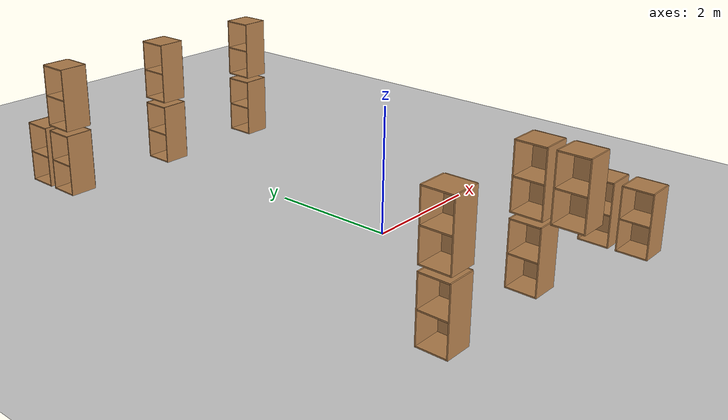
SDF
<sdf version="1.7">
 <world name="default">
  <model name="ground_plane">
   <static>1</static>
   <link name="link">
    <collision name="collision">
     <geometry><plane><normal>0 0 1</normal><size>100 100</size></plane></geometry>
     <surface><friction><ode><mu>100</mu><mu2>50</mu2></ode></friction></surface>
    </collision>
    <visual name="visual">
     <cast_shadows>0</cast_shadows>
     <geometry><plane><normal>0 0 1</normal><size>100 100</size></plane></geometry>
     <material>
      <script><uri>file://media/materials/scripts/gazebo.material</uri><name>Gazebo/Grey</name></script>
     </material>
    </visual>
   </link>
  </model>
  <model name="cabinet_4">
   <static>1</static>
   <link name="cabinet_bottom_plate">
    <inertial>
     <pose>0 0 -1 0 -0 0</pose>
     <inertia><ixx>2.05</ixx><ixy>0</ixy><ixz>0</ixz><iyy>2.05</iyy><iyz>0</iyz><izz>2.05</izz></inertia>
     <mass>25</mass>
    </inertial>
    <collision name="cabinet_bottom_plate_geom">
     <pose>0 0 0.01 0 -0 0</pose>
     <geometry><box><size>0.45 0.45 0.02</size></box></geometry>
    </collision>
    <visual name="cabinet_bottom_plate_geom_visual">
     <pose>0 0 0.01 0 -0 0</pose>
     <geometry><box><size>0.45 0.45 0.02</size></box></geometry>
     <material>
      <script><uri>file://media/materials/scripts/gazebo.material</uri><name>Gazebo/Wood</name></script>
     </material>
    </visual>
    <collision name="cabinet_bottom_plate_geom_cabinet_back_plate">
     <pose>0.235 0 0.51 0 -0 0</pose>
     <geometry><box><size>0.02 0.45 1.02</size></box></geometry>
    </collision>
    <visual name="cabinet_bottom_plate_geom_cabinet_back_plate_visual">
     <pose>0.235 0 0.51 0 -0 0</pose>
     <geometry><box><size>0.02 0.45 1.02</size></box></geometry>
     <material>
      <script><uri>file://media/materials/scripts/gazebo.material</uri><name>Gazebo/Wood</name></script>
     </material>
    </visual>
    <collision name="cabinet_bottom_plate_geom_cabinet_left_plate">
     <pose>0 0.235 0.51 0 -0 0</pose>
     <geometry><box><size>0.45 0.02 1.02</size></box></geometry>
    </collision>
    <visual name="cabinet_bottom_plate_geom_cabinet_left_plate_visual">
     <pose>0 0.235 0.51 0 -0 0</pose>
     <geometry><box><size>0.45 0.02 1.02</size></box></geometry>
     <material>
      <script><uri>file://media/materials/scripts/gazebo.material</uri><name>Gazebo/Wood</name></script>
     </material>
    </visual>
    <collision name="cabinet_bottom_plate_geom_cabinet_middle_plate">
     <pose>0 0 0.51 0 -0 0</pose>
     <geometry><box><size>0.45 0.45 0.02</size></box></geometry>
    </collision>
    <visual name="cabinet_bottom_plate_geom_cabinet_middle_plate_visual">
     <pose>0 0 0.51 0 -0 0</pose>
     <geometry><box><size>0.45 0.45 0.02</size></box></geometry>
     <material>
      <script><uri>file://media/materials/scripts/gazebo.material</uri><name>Gazebo/Wood</name></script>
     </material>
    </visual>
    <collision name="cabinet_bottom_plate_geom_cabinet_right_plate">
     <pose>0 -0.235 0.51 0 -0 0</pose>
     <geometry><box><size>0.45 0.02 1.02</size></box></geometry>
    </collision>
    <visual name="cabinet_bottom_plate_geom_cabinet_right_plate_visual">
     <pose>0 -0.235 0.51 0 -0 0</pose>
     <geometry><box><size>0.45 0.02 1.02</size></box></geometry>
     <material>
      <script><uri>file://media/materials/scripts/gazebo.material</uri><name>Gazebo/Wood</name></script>
     </material>
    </visual>
    <collision name="cabinet_bottom_plate_geom_cabinet_top_plate">
     <pose>0 0 1.01 0 -0 0</pose>
     <geometry><box><size>0.45 0.45 0.02</size></box></geometry>
    </collision>
    <visual name="cabinet_bottom_plate_geom_cabinet_top_plate_visual">
     <pose>0 0 1.01 0 -0 0</pose>
     <geometry><box><size>0.45 0.45 0.02</size></box></geometry>
     <material>
      <script><uri>file://media/materials/scripts/gazebo.material</uri><name>Gazebo/Wood</name></script>
     </material>
    </visual>
   </link>
   <pose>2 4.9 0 0 -0 0</pose>
  </model>
  <model name="cabinet_15">
   <static>1</static>
   <link name="cabinet_bottom_plate">
    <inertial>
     <pose>0 0 -1 0 -0 0</pose>
     <inertia><ixx>2.05</ixx><ixy>0</ixy><ixz>0</ixz><iyy>2.05</iyy><iyz>0</iyz><izz>2.05</izz></inertia>
     <mass>25</mass>
    </inertial>
    <collision name="cabinet_bottom_plate_geom">
     <pose>0 0 0.01 0 -0 0</pose>
     <geometry><box><size>0.45 0.45 0.02</size></box></geometry>
    </collision>
    <visual name="cabinet_bottom_plate_geom_visual">
     <pose>0 0 0.01 0 -0 0</pose>
     <geometry><box><size>0.45 0.45 0.02</size></box></geometry>
     <material>
      <script><uri>file://media/materials/scripts/gazebo.material</uri><name>Gazebo/Wood</name></script>
     </material>
    </visual>
    <collision name="cabinet_bottom_plate_geom_cabinet_back_plate">
     <pose>0.235 0 0.51 0 -0 0</pose>
     <geometry><box><size>0.02 0.45 1.02</size></box></geometry>
    </collision>
    <visual name="cabinet_bottom_plate_geom_cabinet_back_plate_visual">
     <pose>0.235 0 0.51 0 -0 0</pose>
     <geometry><box><size>0.02 0.45 1.02</size></box></geometry>
     <material>
      <script><uri>file://media/materials/scripts/gazebo.material</uri><name>Gazebo/Wood</name></script>
     </material>
    </visual>
    <collision name="cabinet_bottom_plate_geom_cabinet_left_plate">
     <pose>0 0.235 0.51 0 -0 0</pose>
     <geometry><box><size>0.45 0.02 1.02</size></box></geometry>
    </collision>
    <visual name="cabinet_bottom_plate_geom_cabinet_left_plate_visual">
     <pose>0 0.235 0.51 0 -0 0</pose>
     <geometry><box><size>0.45 0.02 1.02</size></box></geometry>
     <material>
      <script><uri>file://media/materials/scripts/gazebo.material</uri><name>Gazebo/Wood</name></script>
     </material>
    </visual>
    <collision name="cabinet_bottom_plate_geom_cabinet_middle_plate">
     <pose>0 0 0.51 0 -0 0</pose>
     <geometry><box><size>0.45 0.45 0.02</size></box></geometry>
    </collision>
    <visual name="cabinet_bottom_plate_geom_cabinet_middle_plate_visual">
     <pose>0 0 0.51 0 -0 0</pose>
     <geometry><box><size>0.45 0.45 0.02</size></box></geometry>
     <material>
      <script><uri>file://media/materials/scripts/gazebo.material</uri><name>Gazebo/Wood</name></script>
     </material>
    </visual>
    <collision name="cabinet_bottom_plate_geom_cabinet_right_plate">
     <pose>0 -0.235 0.51 0 -0 0</pose>
     <geometry><box><size>0.45 0.02 1.02</size></box></geometry>
    </collision>
    <visual name="cabinet_bottom_plate_geom_cabinet_right_plate_visual">
     <pose>0 -0.235 0.51 0 -0 0</pose>
     <geometry><box><size>0.45 0.02 1.02</size></box></geometry>
     <material>
      <script><uri>file://media/materials/scripts/gazebo.material</uri><name>Gazebo/Wood</name></script>
     </material>
    </visual>
    <collision name="cabinet_bottom_plate_geom_cabinet_top_plate">
     <pose>0 0 1.01 0 -0 0</pose>
     <geometry><box><size>0.45 0.45 0.02</size></box></geometry>
    </collision>
    <visual name="cabinet_bottom_plate_geom_cabinet_top_plate_visual">
     <pose>0 0 1.01 0 -0 0</pose>
     <geometry><box><size>0.45 0.45 0.02</size></box></geometry>
     <material>
      <script><uri>file://media/materials/scripts/gazebo.material</uri><name>Gazebo/Wood</name></script>
     </material>
    </visual>
   </link>
   <pose>0 4.9 0 0 -0 0</pose>
  </model>
  <model name="cabinet_16_clone">
   <static>1</static>
   <link name="cabinet_bottom_plate">
    <inertial>
     <pose>0 0 -1 0 -0 0</pose>
     <inertia><ixx>2.05</ixx><ixy>0</ixy><ixz>0</ixz><iyy>2.05</iyy><iyz>0</iyz><izz>2.05</izz></inertia>
     <mass>25</mass>
    </inertial>
    <collision name="cabinet_bottom_plate_geom">
     <pose>0 0 0.01 0 -0 0</pose>
     <geometry><box><size>0.45 0.45 0.02</size></box></geometry>
    </collision>
    <visual name="cabinet_bottom_plate_geom_visual">
     <pose>0 0 0.01 0 -0 0</pose>
     <geometry><box><size>0.45 0.45 0.02</size></box></geometry>
     <material>
      <script><uri>file://media/materials/scripts/gazebo.material</uri><name>Gazebo/Wood</name></script>
     </material>
    </visual>
    <collision name="cabinet_bottom_plate_geom_cabinet_back_plate">
     <pose>0.235 0 0.51 0 -0 0</pose>
     <geometry><box><size>0.02 0.45 1.02</size></box></geometry>
    </collision>
    <visual name="cabinet_bottom_plate_geom_cabinet_back_plate_visual">
     <pose>0.235 0 0.51 0 -0 0</pose>
     <geometry><box><size>0.02 0.45 1.02</size></box></geometry>
     <material>
      <script><uri>file://media/materials/scripts/gazebo.material</uri><name>Gazebo/Wood</name></script>
     </material>
    </visual>
    <collision name="cabinet_bottom_plate_geom_cabinet_left_plate">
     <pose>0 0.235 0.51 0 -0 0</pose>
     <geometry><box><size>0.45 0.02 1.02</size></box></geometry>
    </collision>
    <visual name="cabinet_bottom_plate_geom_cabinet_left_plate_visual">
     <pose>0 0.235 0.51 0 -0 0</pose>
     <geometry><box><size>0.45 0.02 1.02</size></box></geometry>
     <material>
      <script><uri>file://media/materials/scripts/gazebo.material</uri><name>Gazebo/Wood</name></script>
     </material>
    </visual>
    <collision name="cabinet_bottom_plate_geom_cabinet_middle_plate">
     <pose>0 0 0.51 0 -0 0</pose>
     <geometry><box><size>0.45 0.45 0.02</size></box></geometry>
    </collision>
    <visual name="cabinet_bottom_plate_geom_cabinet_middle_plate_visual">
     <pose>0 0 0.51 0 -0 0</pose>
     <geometry><box><size>0.45 0.45 0.02</size></box></geometry>
     <material>
      <script><uri>file://media/materials/scripts/gazebo.material</uri><name>Gazebo/Wood</name></script>
     </material>
    </visual>
    <collision name="cabinet_bottom_plate_geom_cabinet_right_plate">
     <pose>0 -0.235 0.51 0 -0 0</pose>
     <geometry><box><size>0.45 0.02 1.02</size></box></geometry>
    </collision>
    <visual name="cabinet_bottom_plate_geom_cabinet_right_plate_visual">
     <pose>0 -0.235 0.51 0 -0 0</pose>
     <geometry><box><size>0.45 0.02 1.02</size></box></geometry>
     <material>
      <script><uri>file://media/materials/scripts/gazebo.material</uri><name>Gazebo/Wood</name></script>
     </material>
    </visual>
    <collision name="cabinet_bottom_plate_geom_cabinet_top_plate">
     <pose>0 0 1.01 0 -0 0</pose>
     <geometry><box><size>0.45 0.45 0.02</size></box></geometry>
    </collision>
    <visual name="cabinet_bottom_plate_geom_cabinet_top_plate_visual">
     <pose>0 0 1.01 0 -0 0</pose>
     <geometry><box><size>0.45 0.45 0.02</size></box></geometry>
     <material>
      <script><uri>file://media/materials/scripts/gazebo.material</uri><name>Gazebo/Wood</name></script>
     </material>
    </visual>
   </link>
   <pose>-2 4.9 0 0 -0 0</pose>
  </model>
  <model name="cabinet_20">
   <static>1</static>
   <link name="cabinet_bottom_plate">
    <inertial>
     <pose>0 0 -1 0 -0 0</pose>
     <inertia><ixx>2.05</ixx><ixy>0</ixy><ixz>0</ixz><iyy>2.05</iyy><iyz>0</iyz><izz>2.05</izz></inertia>
     <mass>25</mass>
    </inertial>
    <collision name="cabinet_bottom_plate_geom">
     <pose>0 0 0.01 0 -0 0</pose>
     <geometry><box><size>0.45 0.45 0.02</size></box></geometry>
    </collision>
    <visual name="cabinet_bottom_plate_geom_visual">
     <pose>0 0 0.01 0 -0 0</pose>
     <geometry><box><size>0.45 0.45 0.02</size></box></geometry>
     <material>
      <script><uri>file://media/materials/scripts/gazebo.material</uri><name>Gazebo/Wood</name></script>
     </material>
    </visual>
    <collision name="cabinet_bottom_plate_geom_cabinet_back_plate">
     <pose>0.235 0 0.51 0 -0 0</pose>
     <geometry><box><size>0.02 0.45 1.02</size></box></geometry>
    </collision>
    <visual name="cabinet_bottom_plate_geom_cabinet_back_plate_visual">
     <pose>0.235 0 0.51 0 -0 0</pose>
     <geometry><box><size>0.02 0.45 1.02</size></box></geometry>
     <material>
      <script><uri>file://media/materials/scripts/gazebo.material</uri><name>Gazebo/Wood</name></script>
     </material>
    </visual>
    <collision name="cabinet_bottom_plate_geom_cabinet_left_plate">
     <pose>0 0.235 0.51 0 -0 0</pose>
     <geometry><box><size>0.45 0.02 1.02</size></box></geometry>
    </collision>
    <visual name="cabinet_bottom_plate_geom_cabinet_left_plate_visual">
     <pose>0 0.235 0.51 0 -0 0</pose>
     <geometry><box><size>0.45 0.02 1.02</size></box></geometry>
     <material>
      <script><uri>file://media/materials/scripts/gazebo.material</uri><name>Gazebo/Wood</name></script>
     </material>
    </visual>
    <collision name="cabinet_bottom_plate_geom_cabinet_middle_plate">
     <pose>0 0 0.51 0 -0 0</pose>
     <geometry><box><size>0.45 0.45 0.02</size></box></geometry>
    </collision>
    <visual name="cabinet_bottom_plate_geom_cabinet_middle_plate_visual">
     <pose>0 0 0.51 0 -0 0</pose>
     <geometry><box><size>0.45 0.45 0.02</size></box></geometry>
     <material>
      <script><uri>file://media/materials/scripts/gazebo.material</uri><name>Gazebo/Wood</name></script>
     </material>
    </visual>
    <collision name="cabinet_bottom_plate_geom_cabinet_right_plate">
     <pose>0 -0.235 0.51 0 -0 0</pose>
     <geometry><box><size>0.45 0.02 1.02</size></box></geometry>
    </collision>
    <visual name="cabinet_bottom_plate_geom_cabinet_right_plate_visual">
     <pose>0 -0.235 0.51 0 -0 0</pose>
     <geometry><box><size>0.45 0.02 1.02</size></box></geometry>
     <material>
      <script><uri>file://media/materials/scripts/gazebo.material</uri><name>Gazebo/Wood</name></script>
     </material>
    </visual>
    <collision name="cabinet_bottom_plate_geom_cabinet_top_plate">
     <pose>0 0 1.01 0 -0 0</pose>
     <geometry><box><size>0.45 0.45 0.02</size></box></geometry>
    </collision>
    <visual name="cabinet_bottom_plate_geom_cabinet_top_plate_visual">
     <pose>0 0 1.01 0 -0 0</pose>
     <geometry><box><size>0.45 0.45 0.02</size></box></geometry>
     <material>
      <script><uri>file://media/materials/scripts/gazebo.material</uri><name>Gazebo/Wood</name></script>
     </material>
    </visual>
   </link>
   <pose>-2 5.5 0 0 -0 0</pose>
  </model>
  <model name="cabinet_33">
   <static>1</static>
   <link name="cabinet_bottom_plate">
    <inertial>
     <pose>0 0 -1 0 -0 0</pose>
     <inertia><ixx>2.05</ixx><ixy>0</ixy><ixz>0</ixz><iyy>2.05</iyy><iyz>0</iyz><izz>2.05</izz></inertia>
     <mass>25</mass>
    </inertial>
    <collision name="cabinet_bottom_plate_geom">
     <pose>0 0 0.01 0 -0 0</pose>
     <geometry><box><size>0.45 0.45 0.02</size></box></geometry>
    </collision>
    <visual name="cabinet_bottom_plate_geom_visual">
     <pose>0 0 0.01 0 -0 0</pose>
     <geometry><box><size>0.45 0.45 0.02</size></box></geometry>
     <material>
      <script><uri>file://media/materials/scripts/gazebo.material</uri><name>Gazebo/Wood</name></script>
     </material>
    </visual>
    <collision name="cabinet_bottom_plate_geom_cabinet_back_plate">
     <pose>0.235 0 0.51 0 -0 0</pose>
     <geometry><box><size>0.02 0.45 1.02</size></box></geometry>
    </collision>
    <visual name="cabinet_bottom_plate_geom_cabinet_back_plate_visual">
     <pose>0.235 0 0.51 0 -0 0</pose>
     <geometry><box><size>0.02 0.45 1.02</size></box></geometry>
     <material>
      <script><uri>file://media/materials/scripts/gazebo.material</uri><name>Gazebo/Wood</name></script>
     </material>
    </visual>
    <collision name="cabinet_bottom_plate_geom_cabinet_left_plate">
     <pose>0 0.235 0.51 0 -0 0</pose>
     <geometry><box><size>0.45 0.02 1.02</size></box></geometry>
    </collision>
    <visual name="cabinet_bottom_plate_geom_cabinet_left_plate_visual">
     <pose>0 0.235 0.51 0 -0 0</pose>
     <geometry><box><size>0.45 0.02 1.02</size></box></geometry>
     <material>
      <script><uri>file://media/materials/scripts/gazebo.material</uri><name>Gazebo/Wood</name></script>
     </material>
    </visual>
    <collision name="cabinet_bottom_plate_geom_cabinet_middle_plate">
     <pose>0 0 0.51 0 -0 0</pose>
     <geometry><box><size>0.45 0.45 0.02</size></box></geometry>
    </collision>
    <visual name="cabinet_bottom_plate_geom_cabinet_middle_plate_visual">
     <pose>0 0 0.51 0 -0 0</pose>
     <geometry><box><size>0.45 0.45 0.02</size></box></geometry>
     <material>
      <script><uri>file://media/materials/scripts/gazebo.material</uri><name>Gazebo/Wood</name></script>
     </material>
    </visual>
    <collision name="cabinet_bottom_plate_geom_cabinet_right_plate">
     <pose>0 -0.235 0.51 0 -0 0</pose>
     <geometry><box><size>0.45 0.02 1.02</size></box></geometry>
    </collision>
    <visual name="cabinet_bottom_plate_geom_cabinet_right_plate_visual">
     <pose>0 -0.235 0.51 0 -0 0</pose>
     <geometry><box><size>0.45 0.02 1.02</size></box></geometry>
     <material>
      <script><uri>file://media/materials/scripts/gazebo.material</uri><name>Gazebo/Wood</name></script>
     </material>
    </visual>
    <collision name="cabinet_bottom_plate_geom_cabinet_top_plate">
     <pose>0 0 1.01 0 -0 0</pose>
     <geometry><box><size>0.45 0.45 0.02</size></box></geometry>
    </collision>
    <visual name="cabinet_bottom_plate_geom_cabinet_top_plate_visual">
     <pose>0 0 1.01 0 -0 0</pose>
     <geometry><box><size>0.45 0.45 0.02</size></box></geometry>
     <material>
      <script><uri>file://media/materials/scripts/gazebo.material</uri><name>Gazebo/Wood</name></script>
     </material>
    </visual>
   </link>
   <pose>2 -2.5 0 0 -0 0</pose>
  </model>
  <model name="cabinet_34">
   <static>1</static>
   <link name="cabinet_bottom_plate">
    <inertial>
     <pose>0 0 -1 0 -0 0</pose>
     <inertia><ixx>2.05</ixx><ixy>0</ixy><ixz>0</ixz><iyy>2.05</iyy><iyz>0</iyz><izz>2.05</izz></inertia>
     <mass>25</mass>
    </inertial>
    <collision name="cabinet_bottom_plate_geom">
     <pose>0 0 0.01 0 -0 0</pose>
     <geometry><box><size>0.45 0.45 0.02</size></box></geometry>
    </collision>
    <visual name="cabinet_bottom_plate_geom_visual">
     <pose>0 0 0.01 0 -0 0</pose>
     <geometry><box><size>0.45 0.45 0.02</size></box></geometry>
     <material>
      <script><uri>file://media/materials/scripts/gazebo.material</uri><name>Gazebo/Wood</name></script>
     </material>
    </visual>
    <collision name="cabinet_bottom_plate_geom_cabinet_back_plate">
     <pose>0.235 0 0.51 0 -0 0</pose>
     <geometry><box><size>0.02 0.45 1.02</size></box></geometry>
    </collision>
    <visual name="cabinet_bottom_plate_geom_cabinet_back_plate_visual">
     <pose>0.235 0 0.51 0 -0 0</pose>
     <geometry><box><size>0.02 0.45 1.02</size></box></geometry>
     <material>
      <script><uri>file://media/materials/scripts/gazebo.material</uri><name>Gazebo/Wood</name></script>
     </material>
    </visual>
    <collision name="cabinet_bottom_plate_geom_cabinet_left_plate">
     <pose>0 0.235 0.51 0 -0 0</pose>
     <geometry><box><size>0.45 0.02 1.02</size></box></geometry>
    </collision>
    <visual name="cabinet_bottom_plate_geom_cabinet_left_plate_visual">
     <pose>0 0.235 0.51 0 -0 0</pose>
     <geometry><box><size>0.45 0.02 1.02</size></box></geometry>
     <material>
      <script><uri>file://media/materials/scripts/gazebo.material</uri><name>Gazebo/Wood</name></script>
     </material>
    </visual>
    <collision name="cabinet_bottom_plate_geom_cabinet_middle_plate">
     <pose>0 0 0.51 0 -0 0</pose>
     <geometry><box><size>0.45 0.45 0.02</size></box></geometry>
    </collision>
    <visual name="cabinet_bottom_plate_geom_cabinet_middle_plate_visual">
     <pose>0 0 0.51 0 -0 0</pose>
     <geometry><box><size>0.45 0.45 0.02</size></box></geometry>
     <material>
      <script><uri>file://media/materials/scripts/gazebo.material</uri><name>Gazebo/Wood</name></script>
     </material>
    </visual>
    <collision name="cabinet_bottom_plate_geom_cabinet_right_plate">
     <pose>0 -0.235 0.51 0 -0 0</pose>
     <geometry><box><size>0.45 0.02 1.02</size></box></geometry>
    </collision>
    <visual name="cabinet_bottom_plate_geom_cabinet_right_plate_visual">
     <pose>0 -0.235 0.51 0 -0 0</pose>
     <geometry><box><size>0.45 0.02 1.02</size></box></geometry>
     <material>
      <script><uri>file://media/materials/scripts/gazebo.material</uri><name>Gazebo/Wood</name></script>
     </material>
    </visual>
    <collision name="cabinet_bottom_plate_geom_cabinet_top_plate">
     <pose>0 0 1.01 0 -0 0</pose>
     <geometry><box><size>0.45 0.45 0.02</size></box></geometry>
    </collision>
    <visual name="cabinet_bottom_plate_geom_cabinet_top_plate_visual">
     <pose>0 0 1.01 0 -0 0</pose>
     <geometry><box><size>0.45 0.45 0.02</size></box></geometry>
     <material>
      <script><uri>file://media/materials/scripts/gazebo.material</uri><name>Gazebo/Wood</name></script>
     </material>
    </visual>
   </link>
   <pose>2 -3.1 0 0 -0 0</pose>
  </model>
  <model name="cabinet_48">
   <static>1</static>
   <link name="cabinet_bottom_plate">
    <inertial>
     <pose>0 0 -1 0 -0 0</pose>
     <inertia><ixx>2.05</ixx><ixy>0</ixy><ixz>0</ixz><iyy>2.05</iyy><iyz>0</iyz><izz>2.05</izz></inertia>
     <mass>25</mass>
    </inertial>
    <collision name="cabinet_bottom_plate_geom">
     <pose>0 0 0.01 0 -0 0</pose>
     <geometry><box><size>0.45 0.45 0.02</size></box></geometry>
    </collision>
    <visual name="cabinet_bottom_plate_geom_visual">
     <pose>0 0 0.01 0 -0 0</pose>
     <geometry><box><size>0.45 0.45 0.02</size></box></geometry>
     <material>
      <script><uri>file://media/materials/scripts/gazebo.material</uri><name>Gazebo/Wood</name></script>
     </material>
    </visual>
    <collision name="cabinet_bottom_plate_geom_cabinet_back_plate">
     <pose>0.235 0 0.51 0 -0 0</pose>
     <geometry><box><size>0.02 0.45 1.02</size></box></geometry>
    </collision>
    <visual name="cabinet_bottom_plate_geom_cabinet_back_plate_visual">
     <pose>0.235 0 0.51 0 -0 0</pose>
     <geometry><box><size>0.02 0.45 1.02</size></box></geometry>
     <material>
      <script><uri>file://media/materials/scripts/gazebo.material</uri><name>Gazebo/Wood</name></script>
     </material>
    </visual>
    <collision name="cabinet_bottom_plate_geom_cabinet_left_plate">
     <pose>0 0.235 0.51 0 -0 0</pose>
     <geometry><box><size>0.45 0.02 1.02</size></box></geometry>
    </collision>
    <visual name="cabinet_bottom_plate_geom_cabinet_left_plate_visual">
     <pose>0 0.235 0.51 0 -0 0</pose>
     <geometry><box><size>0.45 0.02 1.02</size></box></geometry>
     <material>
      <script><uri>file://media/materials/scripts/gazebo.material</uri><name>Gazebo/Wood</name></script>
     </material>
    </visual>
    <collision name="cabinet_bottom_plate_geom_cabinet_middle_plate">
     <pose>0 0 0.51 0 -0 0</pose>
     <geometry><box><size>0.45 0.45 0.02</size></box></geometry>
    </collision>
    <visual name="cabinet_bottom_plate_geom_cabinet_middle_plate_visual">
     <pose>0 0 0.51 0 -0 0</pose>
     <geometry><box><size>0.45 0.45 0.02</size></box></geometry>
     <material>
      <script><uri>file://media/materials/scripts/gazebo.material</uri><name>Gazebo/Wood</name></script>
     </material>
    </visual>
    <collision name="cabinet_bottom_plate_geom_cabinet_right_plate">
     <pose>0 -0.235 0.51 0 -0 0</pose>
     <geometry><box><size>0.45 0.02 1.02</size></box></geometry>
    </collision>
    <visual name="cabinet_bottom_plate_geom_cabinet_right_plate_visual">
     <pose>0 -0.235 0.51 0 -0 0</pose>
     <geometry><box><size>0.45 0.02 1.02</size></box></geometry>
     <material>
      <script><uri>file://media/materials/scripts/gazebo.material</uri><name>Gazebo/Wood</name></script>
     </material>
    </visual>
    <collision name="cabinet_bottom_plate_geom_cabinet_top_plate">
     <pose>0 0 1.01 0 -0 0</pose>
     <geometry><box><size>0.45 0.45 0.02</size></box></geometry>
    </collision>
    <visual name="cabinet_bottom_plate_geom_cabinet_top_plate_visual">
     <pose>0 0 1.01 0 -0 0</pose>
     <geometry><box><size>0.45 0.45 0.02</size></box></geometry>
     <material>
      <script><uri>file://media/materials/scripts/gazebo.material</uri><name>Gazebo/Wood</name></script>
     </material>
    </visual>
   </link>
   <pose>0 -2.5 0 0 -0 0</pose>
  </model>
  <model name="cabinet_54">
   <static>1</static>
   <link name="cabinet_bottom_plate">
    <inertial>
     <pose>0 0 -1 0 -0 0</pose>
     <inertia><ixx>2.05</ixx><ixy>0</ixy><ixz>0</ixz><iyy>2.05</iyy><iyz>0</iyz><izz>2.05</izz></inertia>
     <mass>25</mass>
    </inertial>
    <collision name="cabinet_bottom_plate_geom">
     <pose>0 0 0.01 0 -0 0</pose>
     <geometry><box><size>0.45 0.45 0.02</size></box></geometry>
    </collision>
    <visual name="cabinet_bottom_plate_geom_visual">
     <pose>0 0 0.01 0 -0 0</pose>
     <geometry><box><size>0.45 0.45 0.02</size></box></geometry>
     <material>
      <script><uri>file://media/materials/scripts/gazebo.material</uri><name>Gazebo/Wood</name></script>
     </material>
    </visual>
    <collision name="cabinet_bottom_plate_geom_cabinet_back_plate">
     <pose>0.235 0 0.51 0 -0 0</pose>
     <geometry><box><size>0.02 0.45 1.02</size></box></geometry>
    </collision>
    <visual name="cabinet_bottom_plate_geom_cabinet_back_plate_visual">
     <pose>0.235 0 0.51 0 -0 0</pose>
     <geometry><box><size>0.02 0.45 1.02</size></box></geometry>
     <material>
      <script><uri>file://media/materials/scripts/gazebo.material</uri><name>Gazebo/Wood</name></script>
     </material>
    </visual>
    <collision name="cabinet_bottom_plate_geom_cabinet_left_plate">
     <pose>0 0.235 0.51 0 -0 0</pose>
     <geometry><box><size>0.45 0.02 1.02</size></box></geometry>
    </collision>
    <visual name="cabinet_bottom_plate_geom_cabinet_left_plate_visual">
     <pose>0 0.235 0.51 0 -0 0</pose>
     <geometry><box><size>0.45 0.02 1.02</size></box></geometry>
     <material>
      <script><uri>file://media/materials/scripts/gazebo.material</uri><name>Gazebo/Wood</name></script>
     </material>
    </visual>
    <collision name="cabinet_bottom_plate_geom_cabinet_middle_plate">
     <pose>0 0 0.51 0 -0 0</pose>
     <geometry><box><size>0.45 0.45 0.02</size></box></geometry>
    </collision>
    <visual name="cabinet_bottom_plate_geom_cabinet_middle_plate_visual">
     <pose>0 0 0.51 0 -0 0</pose>
     <geometry><box><size>0.45 0.45 0.02</size></box></geometry>
     <material>
      <script><uri>file://media/materials/scripts/gazebo.material</uri><name>Gazebo/Wood</name></script>
     </material>
    </visual>
    <collision name="cabinet_bottom_plate_geom_cabinet_right_plate">
     <pose>0 -0.235 0.51 0 -0 0</pose>
     <geometry><box><size>0.45 0.02 1.02</size></box></geometry>
    </collision>
    <visual name="cabinet_bottom_plate_geom_cabinet_right_plate_visual">
     <pose>0 -0.235 0.51 0 -0 0</pose>
     <geometry><box><size>0.45 0.02 1.02</size></box></geometry>
     <material>
      <script><uri>file://media/materials/scripts/gazebo.material</uri><name>Gazebo/Wood</name></script>
     </material>
    </visual>
    <collision name="cabinet_bottom_plate_geom_cabinet_top_plate">
     <pose>0 0 1.01 0 -0 0</pose>
     <geometry><box><size>0.45 0.45 0.02</size></box></geometry>
    </collision>
    <visual name="cabinet_bottom_plate_geom_cabinet_top_plate_visual">
     <pose>0 0 1.01 0 -0 0</pose>
     <geometry><box><size>0.45 0.45 0.02</size></box></geometry>
     <material>
      <script><uri>file://media/materials/scripts/gazebo.material</uri><name>Gazebo/Wood</name></script>
     </material>
    </visual>
   </link>
   <pose>-2 -2.5 0 0 -0 0</pose>
  </model>
  <model name="cabinet_75">
   <static>1</static>
   <link name="cabinet_bottom_plate">
    <inertial>
     <pose>0 0 -1 0 -0 0</pose>
     <inertia><ixx>2.05</ixx><ixy>0</ixy><ixz>0</ixz><iyy>2.05</iyy><iyz>0</iyz><izz>2.05</izz></inertia>
     <mass>25</mass>
    </inertial>
    <collision name="cabinet_bottom_plate_geom">
     <pose>0 0 0.01 0 -0 0</pose>
     <geometry><box><size>0.45 0.45 0.02</size></box></geometry>
    </collision>
    <visual name="cabinet_bottom_plate_geom_visual">
     <pose>0 0 0.01 0 -0 0</pose>
     <geometry><box><size>0.45 0.45 0.02</size></box></geometry>
     <material>
      <script><uri>file://media/materials/scripts/gazebo.material</uri><name>Gazebo/Wood</name></script>
     </material>
    </visual>
    <collision name="cabinet_bottom_plate_geom_cabinet_back_plate">
     <pose>0.235 0 0.51 0 -0 0</pose>
     <geometry><box><size>0.02 0.45 1.02</size></box></geometry>
    </collision>
    <visual name="cabinet_bottom_plate_geom_cabinet_back_plate_visual">
     <pose>0.235 0 0.51 0 -0 0</pose>
     <geometry><box><size>0.02 0.45 1.02</size></box></geometry>
     <material>
      <script><uri>file://media/materials/scripts/gazebo.material</uri><name>Gazebo/Wood</name></script>
     </material>
    </visual>
    <collision name="cabinet_bottom_plate_geom_cabinet_left_plate">
     <pose>0 0.235 0.51 0 -0 0</pose>
     <geometry><box><size>0.45 0.02 1.02</size></box></geometry>
    </collision>
    <visual name="cabinet_bottom_plate_geom_cabinet_left_plate_visual">
     <pose>0 0.235 0.51 0 -0 0</pose>
     <geometry><box><size>0.45 0.02 1.02</size></box></geometry>
     <material>
      <script><uri>file://media/materials/scripts/gazebo.material</uri><name>Gazebo/Wood</name></script>
     </material>
    </visual>
    <collision name="cabinet_bottom_plate_geom_cabinet_middle_plate">
     <pose>0 0 0.51 0 -0 0</pose>
     <geometry><box><size>0.45 0.45 0.02</size></box></geometry>
    </collision>
    <visual name="cabinet_bottom_plate_geom_cabinet_middle_plate_visual">
     <pose>0 0 0.51 0 -0 0</pose>
     <geometry><box><size>0.45 0.45 0.02</size></box></geometry>
     <material>
      <script><uri>file://media/materials/scripts/gazebo.material</uri><name>Gazebo/Wood</name></script>
     </material>
    </visual>
    <collision name="cabinet_bottom_plate_geom_cabinet_right_plate">
     <pose>0 -0.235 0.51 0 -0 0</pose>
     <geometry><box><size>0.45 0.02 1.02</size></box></geometry>
    </collision>
    <visual name="cabinet_bottom_plate_geom_cabinet_right_plate_visual">
     <pose>0 -0.235 0.51 0 -0 0</pose>
     <geometry><box><size>0.45 0.02 1.02</size></box></geometry>
     <material>
      <script><uri>file://media/materials/scripts/gazebo.material</uri><name>Gazebo/Wood</name></script>
     </material>
    </visual>
    <collision name="cabinet_bottom_plate_geom_cabinet_top_plate">
     <pose>0 0 1.01 0 -0 0</pose>
     <geometry><box><size>0.45 0.45 0.02</size></box></geometry>
    </collision>
    <visual name="cabinet_bottom_plate_geom_cabinet_top_plate_visual">
     <pose>0 0 1.01 0 -0 0</pose>
     <geometry><box><size>0.45 0.45 0.02</size></box></geometry>
     <material>
      <script><uri>file://media/materials/scripts/gazebo.material</uri><name>Gazebo/Wood</name></script>
     </material>
    </visual>
   </link>
   <pose>2 4.9 1.1 0 -0 0</pose>
  </model>
  <model name="cabinet_76">
   <static>1</static>
   <link name="cabinet_bottom_plate">
    <inertial>
     <pose>0 0 -1 0 -0 0</pose>
     <inertia><ixx>2.05</ixx><ixy>0</ixy><ixz>0</ixz><iyy>2.05</iyy><iyz>0</iyz><izz>2.05</izz></inertia>
     <mass>25</mass>
    </inertial>
    <collision name="cabinet_bottom_plate_geom">
     <pose>0 0 0.01 0 -0 0</pose>
     <geometry><box><size>0.45 0.45 0.02</size></box></geometry>
    </collision>
    <visual name="cabinet_bottom_plate_geom_visual">
     <pose>0 0 0.01 0 -0 0</pose>
     <geometry><box><size>0.45 0.45 0.02</size></box></geometry>
     <material>
      <script><uri>file://media/materials/scripts/gazebo.material</uri><name>Gazebo/Wood</name></script>
     </material>
    </visual>
    <collision name="cabinet_bottom_plate_geom_cabinet_back_plate">
     <pose>0.235 0 0.51 0 -0 0</pose>
     <geometry><box><size>0.02 0.45 1.02</size></box></geometry>
    </collision>
    <visual name="cabinet_bottom_plate_geom_cabinet_back_plate_visual">
     <pose>0.235 0 0.51 0 -0 0</pose>
     <geometry><box><size>0.02 0.45 1.02</size></box></geometry>
     <material>
      <script><uri>file://media/materials/scripts/gazebo.material</uri><name>Gazebo/Wood</name></script>
     </material>
    </visual>
    <collision name="cabinet_bottom_plate_geom_cabinet_left_plate">
     <pose>0 0.235 0.51 0 -0 0</pose>
     <geometry><box><size>0.45 0.02 1.02</size></box></geometry>
    </collision>
    <visual name="cabinet_bottom_plate_geom_cabinet_left_plate_visual">
     <pose>0 0.235 0.51 0 -0 0</pose>
     <geometry><box><size>0.45 0.02 1.02</size></box></geometry>
     <material>
      <script><uri>file://media/materials/scripts/gazebo.material</uri><name>Gazebo/Wood</name></script>
     </material>
    </visual>
    <collision name="cabinet_bottom_plate_geom_cabinet_middle_plate">
     <pose>0 0 0.51 0 -0 0</pose>
     <geometry><box><size>0.45 0.45 0.02</size></box></geometry>
    </collision>
    <visual name="cabinet_bottom_plate_geom_cabinet_middle_plate_visual">
     <pose>0 0 0.51 0 -0 0</pose>
     <geometry><box><size>0.45 0.45 0.02</size></box></geometry>
     <material>
      <script><uri>file://media/materials/scripts/gazebo.material</uri><name>Gazebo/Wood</name></script>
     </material>
    </visual>
    <collision name="cabinet_bottom_plate_geom_cabinet_right_plate">
     <pose>0 -0.235 0.51 0 -0 0</pose>
     <geometry><box><size>0.45 0.02 1.02</size></box></geometry>
    </collision>
    <visual name="cabinet_bottom_plate_geom_cabinet_right_plate_visual">
     <pose>0 -0.235 0.51 0 -0 0</pose>
     <geometry><box><size>0.45 0.02 1.02</size></box></geometry>
     <material>
      <script><uri>file://media/materials/scripts/gazebo.material</uri><name>Gazebo/Wood</name></script>
     </material>
    </visual>
    <collision name="cabinet_bottom_plate_geom_cabinet_top_plate">
     <pose>0 0 1.01 0 -0 0</pose>
     <geometry><box><size>0.45 0.45 0.02</size></box></geometry>
    </collision>
    <visual name="cabinet_bottom_plate_geom_cabinet_top_plate_visual">
     <pose>0 0 1.01 0 -0 0</pose>
     <geometry><box><size>0.45 0.45 0.02</size></box></geometry>
     <material>
      <script><uri>file://media/materials/scripts/gazebo.material</uri><name>Gazebo/Wood</name></script>
     </material>
    </visual>
   </link>
   <pose>0 4.9 1.1 0 -0 0</pose>
  </model>
  <model name="cabinet_77">
   <static>1</static>
   <link name="cabinet_bottom_plate">
    <inertial>
     <pose>0 0 -1 0 -0 0</pose>
     <inertia><ixx>2.05</ixx><ixy>0</ixy><ixz>0</ixz><iyy>2.05</iyy><iyz>0</iyz><izz>2.05</izz></inertia>
     <mass>25</mass>
    </inertial>
    <collision name="cabinet_bottom_plate_geom">
     <pose>0 0 0.01 0 -0 0</pose>
     <geometry><box><size>0.45 0.45 0.02</size></box></geometry>
    </collision>
    <visual name="cabinet_bottom_plate_geom_visual">
     <pose>0 0 0.01 0 -0 0</pose>
     <geometry><box><size>0.45 0.45 0.02</size></box></geometry>
     <material>
      <script><uri>file://media/materials/scripts/gazebo.material</uri><name>Gazebo/Wood</name></script>
     </material>
    </visual>
    <collision name="cabinet_bottom_plate_geom_cabinet_back_plate">
     <pose>0.235 0 0.51 0 -0 0</pose>
     <geometry><box><size>0.02 0.45 1.02</size></box></geometry>
    </collision>
    <visual name="cabinet_bottom_plate_geom_cabinet_back_plate_visual">
     <pose>0.235 0 0.51 0 -0 0</pose>
     <geometry><box><size>0.02 0.45 1.02</size></box></geometry>
     <material>
      <script><uri>file://media/materials/scripts/gazebo.material</uri><name>Gazebo/Wood</name></script>
     </material>
    </visual>
    <collision name="cabinet_bottom_plate_geom_cabinet_left_plate">
     <pose>0 0.235 0.51 0 -0 0</pose>
     <geometry><box><size>0.45 0.02 1.02</size></box></geometry>
    </collision>
    <visual name="cabinet_bottom_plate_geom_cabinet_left_plate_visual">
     <pose>0 0.235 0.51 0 -0 0</pose>
     <geometry><box><size>0.45 0.02 1.02</size></box></geometry>
     <material>
      <script><uri>file://media/materials/scripts/gazebo.material</uri><name>Gazebo/Wood</name></script>
     </material>
    </visual>
    <collision name="cabinet_bottom_plate_geom_cabinet_middle_plate">
     <pose>0 0 0.51 0 -0 0</pose>
     <geometry><box><size>0.45 0.45 0.02</size></box></geometry>
    </collision>
    <visual name="cabinet_bottom_plate_geom_cabinet_middle_plate_visual">
     <pose>0 0 0.51 0 -0 0</pose>
     <geometry><box><size>0.45 0.45 0.02</size></box></geometry>
     <material>
      <script><uri>file://media/materials/scripts/gazebo.material</uri><name>Gazebo/Wood</name></script>
     </material>
    </visual>
    <collision name="cabinet_bottom_plate_geom_cabinet_right_plate">
     <pose>0 -0.235 0.51 0 -0 0</pose>
     <geometry><box><size>0.45 0.02 1.02</size></box></geometry>
    </collision>
    <visual name="cabinet_bottom_plate_geom_cabinet_right_plate_visual">
     <pose>0 -0.235 0.51 0 -0 0</pose>
     <geometry><box><size>0.45 0.02 1.02</size></box></geometry>
     <material>
      <script><uri>file://media/materials/scripts/gazebo.material</uri><name>Gazebo/Wood</name></script>
     </material>
    </visual>
    <collision name="cabinet_bottom_plate_geom_cabinet_top_plate">
     <pose>0 0 1.01 0 -0 0</pose>
     <geometry><box><size>0.45 0.45 0.02</size></box></geometry>
    </collision>
    <visual name="cabinet_bottom_plate_geom_cabinet_top_plate_visual">
     <pose>0 0 1.01 0 -0 0</pose>
     <geometry><box><size>0.45 0.45 0.02</size></box></geometry>
     <material>
      <script><uri>file://media/materials/scripts/gazebo.material</uri><name>Gazebo/Wood</name></script>
     </material>
    </visual>
   </link>
   <pose>-2 4.9 1.1 0 -0 0</pose>
  </model>
  <model name="cabinet_111">
   <static>1</static>
   <link name="cabinet_bottom_plate">
    <inertial>
     <pose>0 0 -1 0 -0 0</pose>
     <inertia><ixx>2.05</ixx><ixy>0</ixy><ixz>0</ixz><iyy>2.05</iyy><iyz>0</iyz><izz>2.05</izz></inertia>
     <mass>25</mass>
    </inertial>
    <collision name="cabinet_bottom_plate_geom">
     <pose>0 0 0.01 0 -0 0</pose>
     <geometry><box><size>0.45 0.45 0.02</size></box></geometry>
    </collision>
    <visual name="cabinet_bottom_plate_geom_visual">
     <pose>0 0 0.01 0 -0 0</pose>
     <geometry><box><size>0.45 0.45 0.02</size></box></geometry>
     <material>
      <script><uri>file://media/materials/scripts/gazebo.material</uri><name>Gazebo/Wood</name></script>
     </material>
    </visual>
    <collision name="cabinet_bottom_plate_geom_cabinet_back_plate">
     <pose>0.235 0 0.51 0 -0 0</pose>
     <geometry><box><size>0.02 0.45 1.02</size></box></geometry>
    </collision>
    <visual name="cabinet_bottom_plate_geom_cabinet_back_plate_visual">
     <pose>0.235 0 0.51 0 -0 0</pose>
     <geometry><box><size>0.02 0.45 1.02</size></box></geometry>
     <material>
      <script><uri>file://media/materials/scripts/gazebo.material</uri><name>Gazebo/Wood</name></script>
     </material>
    </visual>
    <collision name="cabinet_bottom_plate_geom_cabinet_left_plate">
     <pose>0 0.235 0.51 0 -0 0</pose>
     <geometry><box><size>0.45 0.02 1.02</size></box></geometry>
    </collision>
    <visual name="cabinet_bottom_plate_geom_cabinet_left_plate_visual">
     <pose>0 0.235 0.51 0 -0 0</pose>
     <geometry><box><size>0.45 0.02 1.02</size></box></geometry>
     <material>
      <script><uri>file://media/materials/scripts/gazebo.material</uri><name>Gazebo/Wood</name></script>
     </material>
    </visual>
    <collision name="cabinet_bottom_plate_geom_cabinet_middle_plate">
     <pose>0 0 0.51 0 -0 0</pose>
     <geometry><box><size>0.45 0.45 0.02</size></box></geometry>
    </collision>
    <visual name="cabinet_bottom_plate_geom_cabinet_middle_plate_visual">
     <pose>0 0 0.51 0 -0 0</pose>
     <geometry><box><size>0.45 0.45 0.02</size></box></geometry>
     <material>
      <script><uri>file://media/materials/scripts/gazebo.material</uri><name>Gazebo/Wood</name></script>
     </material>
    </visual>
    <collision name="cabinet_bottom_plate_geom_cabinet_right_plate">
     <pose>0 -0.235 0.51 0 -0 0</pose>
     <geometry><box><size>0.45 0.02 1.02</size></box></geometry>
    </collision>
    <visual name="cabinet_bottom_plate_geom_cabinet_right_plate_visual">
     <pose>0 -0.235 0.51 0 -0 0</pose>
     <geometry><box><size>0.45 0.02 1.02</size></box></geometry>
     <material>
      <script><uri>file://media/materials/scripts/gazebo.material</uri><name>Gazebo/Wood</name></script>
     </material>
    </visual>
    <collision name="cabinet_bottom_plate_geom_cabinet_top_plate">
     <pose>0 0 1.01 0 -0 0</pose>
     <geometry><box><size>0.45 0.45 0.02</size></box></geometry>
    </collision>
    <visual name="cabinet_bottom_plate_geom_cabinet_top_plate_visual">
     <pose>0 0 1.01 0 -0 0</pose>
     <geometry><box><size>0.45 0.45 0.02</size></box></geometry>
     <material>
      <script><uri>file://media/materials/scripts/gazebo.material</uri><name>Gazebo/Wood</name></script>
     </material>
    </visual>
   </link>
   <pose>0 -2.5 1.1 0 -0 0</pose>
  </model>
  <model name="cabinet_112">
   <static>1</static>
   <link name="cabinet_bottom_plate">
    <inertial>
     <pose>0 0 -1 0 -0 0</pose>
     <inertia><ixx>2.05</ixx><ixy>0</ixy><ixz>0</ixz><iyy>2.05</iyy><iyz>0</iyz><izz>2.05</izz></inertia>
     <mass>25</mass>
    </inertial>
    <collision name="cabinet_bottom_plate_geom">
     <pose>0 0 0.01 0 -0 0</pose>
     <geometry><box><size>0.45 0.45 0.02</size></box></geometry>
    </collision>
    <visual name="cabinet_bottom_plate_geom_visual">
     <pose>0 0 0.01 0 -0 0</pose>
     <geometry><box><size>0.45 0.45 0.02</size></box></geometry>
     <material>
      <script><uri>file://media/materials/scripts/gazebo.material</uri><name>Gazebo/Wood</name></script>
     </material>
    </visual>
    <collision name="cabinet_bottom_plate_geom_cabinet_back_plate">
     <pose>0.235 0 0.51 0 -0 0</pose>
     <geometry><box><size>0.02 0.45 1.02</size></box></geometry>
    </collision>
    <visual name="cabinet_bottom_plate_geom_cabinet_back_plate_visual">
     <pose>0.235 0 0.51 0 -0 0</pose>
     <geometry><box><size>0.02 0.45 1.02</size></box></geometry>
     <material>
      <script><uri>file://media/materials/scripts/gazebo.material</uri><name>Gazebo/Wood</name></script>
     </material>
    </visual>
    <collision name="cabinet_bottom_plate_geom_cabinet_left_plate">
     <pose>0 0.235 0.51 0 -0 0</pose>
     <geometry><box><size>0.45 0.02 1.02</size></box></geometry>
    </collision>
    <visual name="cabinet_bottom_plate_geom_cabinet_left_plate_visual">
     <pose>0 0.235 0.51 0 -0 0</pose>
     <geometry><box><size>0.45 0.02 1.02</size></box></geometry>
     <material>
      <script><uri>file://media/materials/scripts/gazebo.material</uri><name>Gazebo/Wood</name></script>
     </material>
    </visual>
    <collision name="cabinet_bottom_plate_geom_cabinet_middle_plate">
     <pose>0 0 0.51 0 -0 0</pose>
     <geometry><box><size>0.45 0.45 0.02</size></box></geometry>
    </collision>
    <visual name="cabinet_bottom_plate_geom_cabinet_middle_plate_visual">
     <pose>0 0 0.51 0 -0 0</pose>
     <geometry><box><size>0.45 0.45 0.02</size></box></geometry>
     <material>
      <script><uri>file://media/materials/scripts/gazebo.material</uri><name>Gazebo/Wood</name></script>
     </material>
    </visual>
    <collision name="cabinet_bottom_plate_geom_cabinet_right_plate">
     <pose>0 -0.235 0.51 0 -0 0</pose>
     <geometry><box><size>0.45 0.02 1.02</size></box></geometry>
    </collision>
    <visual name="cabinet_bottom_plate_geom_cabinet_right_plate_visual">
     <pose>0 -0.235 0.51 0 -0 0</pose>
     <geometry><box><size>0.45 0.02 1.02</size></box></geometry>
     <material>
      <script><uri>file://media/materials/scripts/gazebo.material</uri><name>Gazebo/Wood</name></script>
     </material>
    </visual>
    <collision name="cabinet_bottom_plate_geom_cabinet_top_plate">
     <pose>0 0 1.01 0 -0 0</pose>
     <geometry><box><size>0.45 0.45 0.02</size></box></geometry>
    </collision>
    <visual name="cabinet_bottom_plate_geom_cabinet_top_plate_visual">
     <pose>0 0 1.01 0 -0 0</pose>
     <geometry><box><size>0.45 0.45 0.02</size></box></geometry>
     <material>
      <script><uri>file://media/materials/scripts/gazebo.material</uri><name>Gazebo/Wood</name></script>
     </material>
    </visual>
   </link>
   <pose>-2 -2.5 1.1 0 -0 0</pose>
  </model>
  <model name="cabinet_16_clone_10">
   <static>1</static>
   <link name="cabinet_bottom_plate">
    <inertial>
     <pose>0 0 -1 0 -0 0</pose>
     <inertia><ixx>2.05</ixx><ixy>0</ixy><ixz>0</ixz><iyy>2.05</iyy><iyz>0</iyz><izz>2.05</izz></inertia>
     <mass>25</mass>
    </inertial>
    <collision name="cabinet_bottom_plate_geom">
     <pose>0 0 0.01 0 -0 0</pose>
     <geometry><box><size>0.45 0.45 0.02</size></box></geometry>
    </collision>
    <visual name="cabinet_bottom_plate_geom_visual">
     <pose>0 0 0.01 0 -0 0</pose>
     <geometry><box><size>0.45 0.45 0.02</size></box></geometry>
     <material>
      <script><uri>file://media/materials/scripts/gazebo.material</uri><name>Gazebo/Wood</name></script>
     </material>
    </visual>
    <collision name="cabinet_bottom_plate_geom_cabinet_back_plate">
     <pose>0.235 0 0.51 0 -0 0</pose>
     <geometry><box><size>0.02 0.45 1.02</size></box></geometry>
    </collision>
    <visual name="cabinet_bottom_plate_geom_cabinet_back_plate_visual">
     <pose>0.235 0 0.51 0 -0 0</pose>
     <geometry><box><size>0.02 0.45 1.02</size></box></geometry>
     <material>
      <script><uri>file://media/materials/scripts/gazebo.material</uri><name>Gazebo/Wood</name></script>
     </material>
    </visual>
    <collision name="cabinet_bottom_plate_geom_cabinet_left_plate">
     <pose>0 0.235 0.51 0 -0 0</pose>
     <geometry><box><size>0.45 0.02 1.02</size></box></geometry>
    </collision>
    <visual name="cabinet_bottom_plate_geom_cabinet_left_plate_visual">
     <pose>0 0.235 0.51 0 -0 0</pose>
     <geometry><box><size>0.45 0.02 1.02</size></box></geometry>
     <material>
      <script><uri>file://media/materials/scripts/gazebo.material</uri><name>Gazebo/Wood</name></script>
     </material>
    </visual>
    <collision name="cabinet_bottom_plate_geom_cabinet_middle_plate">
     <pose>0 0 0.51 0 -0 0</pose>
     <geometry><box><size>0.45 0.45 0.02</size></box></geometry>
    </collision>
    <visual name="cabinet_bottom_plate_geom_cabinet_middle_plate_visual">
     <pose>0 0 0.51 0 -0 0</pose>
     <geometry><box><size>0.45 0.45 0.02</size></box></geometry>
     <material>
      <script><uri>file://media/materials/scripts/gazebo.material</uri><name>Gazebo/Wood</name></script>
     </material>
    </visual>
    <collision name="cabinet_bottom_plate_geom_cabinet_right_plate">
     <pose>0 -0.235 0.51 0 -0 0</pose>
     <geometry><box><size>0.45 0.02 1.02</size></box></geometry>
    </collision>
    <visual name="cabinet_bottom_plate_geom_cabinet_right_plate_visual">
     <pose>0 -0.235 0.51 0 -0 0</pose>
     <geometry><box><size>0.45 0.02 1.02</size></box></geometry>
     <material>
      <script><uri>file://media/materials/scripts/gazebo.material</uri><name>Gazebo/Wood</name></script>
     </material>
    </visual>
    <collision name="cabinet_bottom_plate_geom_cabinet_top_plate">
     <pose>0 0 1.01 0 -0 0</pose>
     <geometry><box><size>0.45 0.45 0.02</size></box></geometry>
    </collision>
    <visual name="cabinet_bottom_plate_geom_cabinet_top_plate_visual">
     <pose>0 0 1.01 0 -0 0</pose>
     <geometry><box><size>0.45 0.45 0.02</size></box></geometry>
     <material>
      <script><uri>file://media/materials/scripts/gazebo.material</uri><name>Gazebo/Wood</name></script>
     </material>
    </visual>
   </link>
   <pose>0 -3.1 1.1 0 -0 0</pose>
  </model>
 </world>
</sdf>
